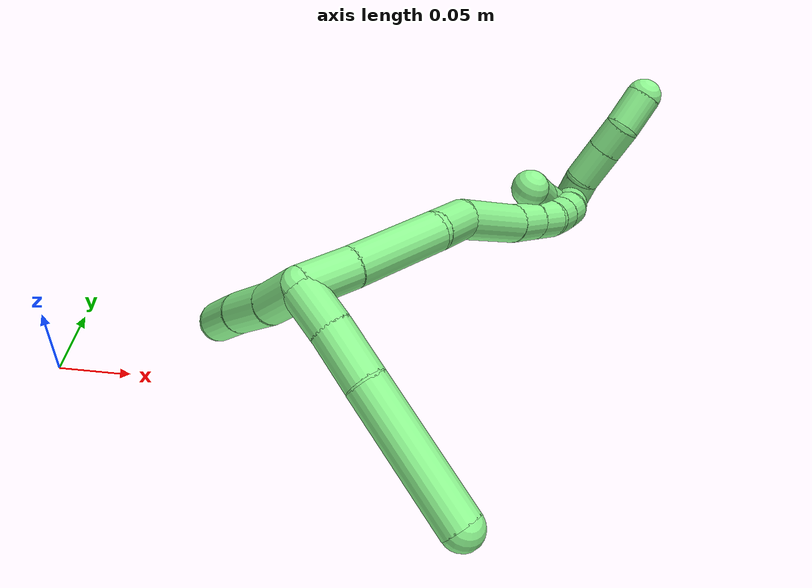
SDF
<sdf version="1.7">
 <world name="default">
  <model name="13">
   <static>0</static>
   <link name="13">
    <collision name="collision-cylinder-e_1_2_8">
     <pose>0.003215 -0.013381 -0.002888 1.78336 0.230701 0.285129</pose>
     <geometry><cylinder><radius>0.0125</radius><length>0.028124</length></cylinder></geometry>
     <surface>
      <friction><ode><mu>1.16</mu><mu2>1.16</mu2><slip1>0</slip1><slip2>0</slip2></ode></friction>
      <contact><ode><kp>1e+06</kp><kd>1</kd><max_vel>0</max_vel><min_depth>0.001</min_depth></ode></contact>
     </surface>
    </collision>
    <visual name="visual-cylinder-e_1_2_8">
     <pose>0.003215 -0.013381 -0.002888 1.78336 0.230701 0.285129</pose>
     <geometry><cylinder><radius>0.0125</radius><length>0.028124</length></cylinder></geometry>
     <material><ambient>0.564706 0.984314 0.572549 1</ambient></material>
    </visual>
    <collision name="collision-cylinder-e_2_8_9">
     <pose>0.00891 -0.043749 -0.008507 1.73023 0.143132 0.167879</pose>
     <geometry><cylinder><radius>0.0125</radius><length>0.034766</length></cylinder></geometry>
     <surface>
      <friction><ode><mu>1.16</mu><mu2>1.16</mu2><slip1>0</slip1><slip2>0</slip2></ode></friction>
      <contact><ode><kp>1e+06</kp><kd>1</kd><max_vel>0</max_vel><min_depth>0.001</min_depth></ode></contact>
     </surface>
    </collision>
    <visual name="visual-cylinder-e_2_8_9">
     <pose>0.00891 -0.043749 -0.008507 1.73023 0.143132 0.167879</pose>
     <geometry><cylinder><radius>0.0125</radius><length>0.034766</length></cylinder></geometry>
     <material><ambient>0.564706 0.984314 0.572549 1</ambient></material>
    </visual>
    <collision name="collision-cylinder-e_3_9_6">
     <pose>0.020383 -0.101903 -0.022261 1.83239 0.207966 0.270293</pose>
     <geometry><cylinder><radius>0.0125</radius><length>0.087111</length></cylinder></geometry>
     <surface>
      <friction><ode><mu>1.16</mu><mu2>1.16</mu2><slip1>0</slip1><slip2>0</slip2></ode></friction>
      <contact><ode><kp>1e+06</kp><kd>1</kd><max_vel>0</max_vel><min_depth>0.001</min_depth></ode></contact>
     </surface>
    </collision>
    <visual name="visual-cylinder-e_3_9_6">
     <pose>0.020383 -0.101903 -0.022261 1.83239 0.207966 0.270293</pose>
     <geometry><cylinder><radius>0.0125</radius><length>0.087111</length></cylinder></geometry>
     <material><ambient>0.564706 0.984314 0.572549 1</ambient></material>
    </visual>
    <collision name="collision-cylinder-e_1_2_10">
     <pose>-0.003029 0.006695 -0.014 -2.69551 -0.192735 0.805753</pose>
     <geometry><cylinder><radius>0.0125</radius><length>0.031622</length></cylinder></geometry>
     <surface>
      <friction><ode><mu>1.16</mu><mu2>1.16</mu2><slip1>0</slip1><slip2>0</slip2></ode></friction>
      <contact><ode><kp>1e+06</kp><kd>1</kd><max_vel>0</max_vel><min_depth>0.001</min_depth></ode></contact>
     </surface>
    </collision>
    <visual name="visual-cylinder-e_1_2_10">
     <pose>-0.003029 0.006695 -0.014 -2.69551 -0.192735 0.805753</pose>
     <geometry><cylinder><radius>0.0125</radius><length>0.031622</length></cylinder></geometry>
     <material><ambient>0.564706 0.984314 0.572549 1</ambient></material>
    </visual>
    <collision name="collision-cylinder-e_2_10_11">
     <pose>-0.008914 0.02272 -0.042435 -2.56782 -0.164735 0.54569</pose>
     <geometry><cylinder><radius>0.0125</radius><length>0.034847</length></cylinder></geometry>
     <surface>
      <friction><ode><mu>1.16</mu><mu2>1.16</mu2><slip1>0</slip1><slip2>0</slip2></ode></friction>
      <contact><ode><kp>1e+06</kp><kd>1</kd><max_vel>0</max_vel><min_depth>0.001</min_depth></ode></contact>
     </surface>
    </collision>
    <visual name="visual-cylinder-e_2_10_11">
     <pose>-0.008914 0.02272 -0.042435 -2.56782 -0.164735 0.54569</pose>
     <geometry><cylinder><radius>0.0125</radius><length>0.034847</length></cylinder></geometry>
     <material><ambient>0.564706 0.984314 0.572549 1</ambient></material>
    </visual>
    <collision name="collision-cylinder-e_3_11_5">
     <pose>-0.012752 0.040473 -0.071332 -2.61419 -0.058485 0.215841</pose>
     <geometry><cylinder><radius>0.0125</radius><length>0.033531</length></cylinder></geometry>
     <surface>
      <friction><ode><mu>1.16</mu><mu2>1.16</mu2><slip1>0</slip1><slip2>0</slip2></ode></friction>
      <contact><ode><kp>1e+06</kp><kd>1</kd><max_vel>0</max_vel><min_depth>0.001</min_depth></ode></contact>
     </surface>
    </collision>
    <visual name="visual-cylinder-e_3_11_5">
     <pose>-0.012752 0.040473 -0.071332 -2.61419 -0.058485 0.215841</pose>
     <geometry><cylinder><radius>0.0125</radius><length>0.033531</length></cylinder></geometry>
     <material><ambient>0.564706 0.984314 0.572549 1</ambient></material>
    </visual>
    <collision name="collision-cylinder-e_1_2_12">
     <pose>0.016704 0.001524 0.001165 -0.917828 1.45646 -0.830025</pose>
     <geometry><cylinder><radius>0.0125</radius><length>0.033628</length></cylinder></geometry>
     <surface>
      <friction><ode><mu>1.16</mu><mu2>1.16</mu2><slip1>0</slip1><slip2>0</slip2></ode></friction>
      <contact><ode><kp>1e+06</kp><kd>1</kd><max_vel>0</max_vel><min_depth>0.001</min_depth></ode></contact>
     </surface>
    </collision>
    <visual name="visual-cylinder-e_1_2_12">
     <pose>0.016704 0.001524 0.001165 -0.917828 1.45646 -0.830025</pose>
     <geometry><cylinder><radius>0.0125</radius><length>0.033628</length></cylinder></geometry>
     <material><ambient>0.564706 0.984314 0.572549 1</ambient></material>
    </visual>
    <collision name="collision-cylinder-e_2_12_13">
     <pose>0.063813 0.00752 0.003817 -1.25 1.41699 -1.10747</pose>
     <geometry><cylinder><radius>0.0125</radius><length>0.061535</length></cylinder></geometry>
     <surface>
      <friction><ode><mu>1.16</mu><mu2>1.16</mu2><slip1>0</slip1><slip2>0</slip2></ode></friction>
      <contact><ode><kp>1e+06</kp><kd>1</kd><max_vel>0</max_vel><min_depth>0.001</min_depth></ode></contact>
     </surface>
    </collision>
    <visual name="visual-cylinder-e_2_12_13">
     <pose>0.063813 0.00752 0.003817 -1.25 1.41699 -1.10747</pose>
     <geometry><cylinder><radius>0.0125</radius><length>0.061535</length></cylinder></geometry>
     <material><ambient>0.564706 0.984314 0.572549 1</ambient></material>
    </visual>
    <collision name="collision-cylinder-e_3_13_14">
     <pose>0.108596 0.016901 0.001669 -2.20823 1.16912 -1.84012</pose>
     <geometry><cylinder><radius>0.0125</radius><length>0.031243</length></cylinder></geometry>
     <surface>
      <friction><ode><mu>1.16</mu><mu2>1.16</mu2><slip1>0</slip1><slip2>0</slip2></ode></friction>
      <contact><ode><kp>1e+06</kp><kd>1</kd><max_vel>0</max_vel><min_depth>0.001</min_depth></ode></contact>
     </surface>
    </collision>
    <visual name="visual-cylinder-e_3_13_14">
     <pose>0.108596 0.016901 0.001669 -2.20823 1.16912 -1.84012</pose>
     <geometry><cylinder><radius>0.0125</radius><length>0.031243</length></cylinder></geometry>
     <material><ambient>0.564706 0.984314 0.572549 1</ambient></material>
    </visual>
    <collision name="collision-cylinder-e_4_14_15">
     <pose>0.147252 0.021775 -0.010433 3.13747 1.23525 3.13579</pose>
     <geometry><cylinder><radius>0.0125</radius><length>0.051425</length></cylinder></geometry>
     <surface>
      <friction><ode><mu>1.16</mu><mu2>1.16</mu2><slip1>0</slip1><slip2>0</slip2></ode></friction>
      <contact><ode><kp>1e+06</kp><kd>1</kd><max_vel>0</max_vel><min_depth>0.001</min_depth></ode></contact>
     </surface>
    </collision>
    <visual name="visual-cylinder-e_4_14_15">
     <pose>0.147252 0.021775 -0.010433 3.13747 1.23525 3.13579</pose>
     <geometry><cylinder><radius>0.0125</radius><length>0.051425</length></cylinder></geometry>
     <material><ambient>0.564706 0.984314 0.572549 1</ambient></material>
    </visual>
    <collision name="collision-cylinder-e_5_15_16">
     <pose>0.182215 0.022588 -0.021441 -2.81946 1.32508 -2.73095</pose>
     <geometry><cylinder><radius>0.0125</radius><length>0.02203</length></cylinder></geometry>
     <surface>
      <friction><ode><mu>1.16</mu><mu2>1.16</mu2><slip1>0</slip1><slip2>0</slip2></ode></friction>
      <contact><ode><kp>1e+06</kp><kd>1</kd><max_vel>0</max_vel><min_depth>0.001</min_depth></ode></contact>
     </surface>
    </collision>
    <visual name="visual-cylinder-e_5_15_16">
     <pose>0.182215 0.022588 -0.021441 -2.81946 1.32508 -2.73095</pose>
     <geometry><cylinder><radius>0.0125</radius><length>0.02203</length></cylinder></geometry>
     <material><ambient>0.564706 0.984314 0.572549 1</ambient></material>
    </visual>
    <collision name="collision-cylinder-e_6_16_17">
     <pose>0.202656 0.024148 -0.026236 -2.83576 1.33321 -2.75471</pose>
     <geometry><cylinder><radius>0.0125</radius><length>0.020078</length></cylinder></geometry>
     <surface>
      <friction><ode><mu>1.16</mu><mu2>1.16</mu2><slip1>0</slip1><slip2>0</slip2></ode></friction>
      <contact><ode><kp>1e+06</kp><kd>1</kd><max_vel>0</max_vel><min_depth>0.001</min_depth></ode></contact>
     </surface>
    </collision>
    <visual name="visual-cylinder-e_6_16_17">
     <pose>0.202656 0.024148 -0.026236 -2.83576 1.33321 -2.75471</pose>
     <geometry><cylinder><radius>0.0125</radius><length>0.020078</length></cylinder></geometry>
     <material><ambient>0.564706 0.984314 0.572549 1</ambient></material>
    </visual>
    <collision name="collision-cylinder-e_7_17_18">
     <pose>0.221195 0.028175 -0.032005 -2.38543 1.06769 -1.95827</pose>
     <geometry><cylinder><radius>0.0125</radius><length>0.020049</length></cylinder></geometry>
     <surface>
      <friction><ode><mu>1.16</mu><mu2>1.16</mu2><slip1>0</slip1><slip2>0</slip2></ode></friction>
      <contact><ode><kp>1e+06</kp><kd>1</kd><max_vel>0</max_vel><min_depth>0.001</min_depth></ode></contact>
     </surface>
    </collision>
    <visual name="visual-cylinder-e_7_17_18">
     <pose>0.221195 0.028175 -0.032005 -2.38543 1.06769 -1.95827</pose>
     <geometry><cylinder><radius>0.0125</radius><length>0.020049</length></cylinder></geometry>
     <material><ambient>0.564706 0.984314 0.572549 1</ambient></material>
    </visual>
    <collision name="collision-cylinder-e_8_18_19">
     <pose>0.23869 0.035267 -0.038668 -2.26571 1.05715 -1.78989</pose>
     <geometry><cylinder><radius>0.0125</radius><length>0.020007</length></cylinder></geometry>
     <surface>
      <friction><ode><mu>1.16</mu><mu2>1.16</mu2><slip1>0</slip1><slip2>0</slip2></ode></friction>
      <contact><ode><kp>1e+06</kp><kd>1</kd><max_vel>0</max_vel><min_depth>0.001</min_depth></ode></contact>
     </surface>
    </collision>
    <visual name="visual-cylinder-e_8_18_19">
     <pose>0.23869 0.035267 -0.038668 -2.26571 1.05715 -1.78989</pose>
     <geometry><cylinder><radius>0.0125</radius><length>0.020007</length></cylinder></geometry>
     <material><ambient>0.564706 0.984314 0.572549 1</ambient></material>
    </visual>
    <collision name="collision-cylinder-e_9_19_20">
     <pose>0.254539 0.044296 -0.046452 -2.29396 0.794566 -1.49833</pose>
     <geometry><cylinder><radius>0.0125</radius><length>0.020003</length></cylinder></geometry>
     <surface>
      <friction><ode><mu>1.16</mu><mu2>1.16</mu2><slip1>0</slip1><slip2>0</slip2></ode></friction>
      <contact><ode><kp>1e+06</kp><kd>1</kd><max_vel>0</max_vel><min_depth>0.001</min_depth></ode></contact>
     </surface>
    </collision>
    <visual name="visual-cylinder-e_9_19_20">
     <pose>0.254539 0.044296 -0.046452 -2.29396 0.794566 -1.49833</pose>
     <geometry><cylinder><radius>0.0125</radius><length>0.020003</length></cylinder></geometry>
     <material><ambient>0.564706 0.984314 0.572549 1</ambient></material>
    </visual>
    <collision name="collision-cylinder-e_10_20_1">
     <pose>0.267407 0.053946 -0.058006 -2.57536 0.610171 -1.64993</pose>
     <geometry><cylinder><radius>0.0125</radius><length>0.020002</length></cylinder></geometry>
     <surface>
      <friction><ode><mu>1.16</mu><mu2>1.16</mu2><slip1>0</slip1><slip2>0</slip2></ode></friction>
      <contact><ode><kp>1e+06</kp><kd>1</kd><max_vel>0</max_vel><min_depth>0.001</min_depth></ode></contact>
     </surface>
    </collision>
    <visual name="visual-cylinder-e_10_20_1">
     <pose>0.267407 0.053946 -0.058006 -2.57536 0.610171 -1.64993</pose>
     <geometry><cylinder><radius>0.0125</radius><length>0.020002</length></cylinder></geometry>
     <material><ambient>0.564706 0.984314 0.572549 1</ambient></material>
    </visual>
    <collision name="collision-cylinder-e_1_1_21">
     <pose>0.274563 0.05957 -0.051964 -0.094362 0.109104 -0.005157</pose>
     <geometry><cylinder><radius>0.0125</radius><length>0.026191</length></cylinder></geometry>
     <surface>
      <friction><ode><mu>1.16</mu><mu2>1.16</mu2><slip1>0</slip1><slip2>0</slip2></ode></friction>
      <contact><ode><kp>1e+06</kp><kd>1</kd><max_vel>0</max_vel><min_depth>0.001</min_depth></ode></contact>
     </surface>
    </collision>
    <visual name="visual-cylinder-e_1_1_21">
     <pose>0.274563 0.05957 -0.051964 -0.094362 0.109104 -0.005157</pose>
     <geometry><cylinder><radius>0.0125</radius><length>0.026191</length></cylinder></geometry>
     <material><ambient>0.564706 0.984314 0.572549 1</ambient></material>
    </visual>
    <collision name="collision-cylinder-e_2_21_22">
     <pose>0.281074 0.06205 -0.026576 -0.100521 0.386578 -0.019691</pose>
     <geometry><cylinder><radius>0.0125</radius><length>0.026973</length></cylinder></geometry>
     <surface>
      <friction><ode><mu>1.16</mu><mu2>1.16</mu2><slip1>0</slip1><slip2>0</slip2></ode></friction>
      <contact><ode><kp>1e+06</kp><kd>1</kd><max_vel>0</max_vel><min_depth>0.001</min_depth></ode></contact>
     </surface>
    </collision>
    <visual name="visual-cylinder-e_2_21_22">
     <pose>0.281074 0.06205 -0.026576 -0.100521 0.386578 -0.019691</pose>
     <geometry><cylinder><radius>0.0125</radius><length>0.026973</length></cylinder></geometry>
     <material><ambient>0.564706 0.984314 0.572549 1</ambient></material>
    </visual>
    <collision name="collision-cylinder-e_3_22_23">
     <pose>0.289993 0.064201 -0.004608 -0.093812 0.380669 -0.018087</pose>
     <geometry><cylinder><radius>0.0125</radius><length>0.020641</length></cylinder></geometry>
     <surface>
      <friction><ode><mu>1.16</mu><mu2>1.16</mu2><slip1>0</slip1><slip2>0</slip2></ode></friction>
      <contact><ode><kp>1e+06</kp><kd>1</kd><max_vel>0</max_vel><min_depth>0.001</min_depth></ode></contact>
     </surface>
    </collision>
    <visual name="visual-cylinder-e_3_22_23">
     <pose>0.289993 0.064201 -0.004608 -0.093812 0.380669 -0.018087</pose>
     <geometry><cylinder><radius>0.0125</radius><length>0.020641</length></cylinder></geometry>
     <material><ambient>0.564706 0.984314 0.572549 1</ambient></material>
    </visual>
    <collision name="collision-cylinder-e_4_23_4">
     <pose>0.301433 0.068946 0.014876 -0.369186 0.619618 -0.119402</pose>
     <geometry><cylinder><radius>0.0125</radius><length>0.026195</length></cylinder></geometry>
     <surface>
      <friction><ode><mu>1.16</mu><mu2>1.16</mu2><slip1>0</slip1><slip2>0</slip2></ode></friction>
      <contact><ode><kp>1e+06</kp><kd>1</kd><max_vel>0</max_vel><min_depth>0.001</min_depth></ode></contact>
     </surface>
    </collision>
    <visual name="visual-cylinder-e_4_23_4">
     <pose>0.301433 0.068946 0.014876 -0.369186 0.619618 -0.119402</pose>
     <geometry><cylinder><radius>0.0125</radius><length>0.026195</length></cylinder></geometry>
     <material><ambient>0.564706 0.984314 0.572549 1</ambient></material>
    </visual>
    <collision name="collision-cylinder-e_1_1_24">
     <pose>0.259964 0.055429 -0.058162 0.406861 -1.06112 -0.240871</pose>
     <geometry><cylinder><radius>0.0125</radius><length>0.030183</length></cylinder></geometry>
     <surface>
      <friction><ode><mu>1.16</mu><mu2>1.16</mu2><slip1>0</slip1><slip2>0</slip2></ode></friction>
      <contact><ode><kp>1e+06</kp><kd>1</kd><max_vel>0</max_vel><min_depth>0.001</min_depth></ode></contact>
     </surface>
    </collision>
    <visual name="visual-cylinder-e_1_1_24">
     <pose>0.259964 0.055429 -0.058162 0.406861 -1.06112 -0.240871</pose>
     <geometry><cylinder><radius>0.0125</radius><length>0.030183</length></cylinder></geometry>
     <material><ambient>0.564706 0.984314 0.572549 1</ambient></material>
    </visual>
    <collision name="collision-cylinder-e_2_24_25">
     <pose>0.233984 0.050223 -0.041669 0.231423 -0.907985 -0.113317</pose>
     <geometry><cylinder><radius>0.0125</radius><length>0.032494</length></cylinder></geometry>
     <surface>
      <friction><ode><mu>1.16</mu><mu2>1.16</mu2><slip1>0</slip1><slip2>0</slip2></ode></friction>
      <contact><ode><kp>1e+06</kp><kd>1</kd><max_vel>0</max_vel><min_depth>0.001</min_depth></ode></contact>
     </surface>
    </collision>
    <visual name="visual-cylinder-e_2_24_25">
     <pose>0.233984 0.050223 -0.041669 0.231423 -0.907985 -0.113317</pose>
     <geometry><cylinder><radius>0.0125</radius><length>0.032494</length></cylinder></geometry>
     <material><ambient>0.564706 0.984314 0.572549 1</ambient></material>
    </visual>
    <collision name="collision-cylinder-e_3_25_3">
     <pose>0.207506 0.043257 -0.020126 0.376667 -0.822105 -0.165771</pose>
     <geometry><cylinder><radius>0.0125</radius><length>0.037324</length></cylinder></geometry>
     <surface>
      <friction><ode><mu>1.16</mu><mu2>1.16</mu2><slip1>0</slip1><slip2>0</slip2></ode></friction>
      <contact><ode><kp>1e+06</kp><kd>1</kd><max_vel>0</max_vel><min_depth>0.001</min_depth></ode></contact>
     </surface>
    </collision>
    <visual name="visual-cylinder-e_3_25_3">
     <pose>0.207506 0.043257 -0.020126 0.376667 -0.822105 -0.165771</pose>
     <geometry><cylinder><radius>0.0125</radius><length>0.037324</length></cylinder></geometry>
     <material><ambient>0.564706 0.984314 0.572549 1</ambient></material>
    </visual>
    <collision name="collision-sphere-3">
     <pose>0.193834 0.038585 -0.008314 0 -0 0</pose>
     <geometry><sphere><radius>0.0125</radius></sphere></geometry>
     <surface>
      <friction><ode><mu>1.16</mu><mu2>1.16</mu2><slip1>0</slip1><slip2>0</slip2></ode></friction>
      <contact><ode><kp>1e+06</kp><kd>1</kd><max_vel>0</max_vel><min_depth>0.001</min_depth></ode></contact>
     </surface>
    </collision>
    <visual name="visual-sphere-3">
     <pose>0.193834 0.038585 -0.008314 0 -0 0</pose>
     <geometry><sphere><radius>0.0125</radius></sphere></geometry>
     <material><ambient>0.564706 0.984314 0.572549 1</ambient></material>
    </visual>
    <collision name="collision-sphere-25">
     <pose>0.221177 0.04793 -0.031939 0 -0 0</pose>
     <geometry><sphere><radius>0.0125</radius></sphere></geometry>
     <surface>
      <friction><ode><mu>1.16</mu><mu2>1.16</mu2><slip1>0</slip1><slip2>0</slip2></ode></friction>
      <contact><ode><kp>1e+06</kp><kd>1</kd><max_vel>0</max_vel><min_depth>0.001</min_depth></ode></contact>
     </surface>
    </collision>
    <visual name="visual-sphere-25">
     <pose>0.221177 0.04793 -0.031939 0 -0 0</pose>
     <geometry><sphere><radius>0.0125</radius></sphere></geometry>
     <material><ambient>0.564706 0.984314 0.572549 1</ambient></material>
    </visual>
    <collision name="collision-sphere-24">
     <pose>0.246791 0.052516 -0.0514 0 -0 0</pose>
     <geometry><sphere><radius>0.0125</radius></sphere></geometry>
     <surface>
      <friction><ode><mu>1.16</mu><mu2>1.16</mu2><slip1>0</slip1><slip2>0</slip2></ode></friction>
      <contact><ode><kp>1e+06</kp><kd>1</kd><max_vel>0</max_vel><min_depth>0.001</min_depth></ode></contact>
     </surface>
    </collision>
    <visual name="visual-sphere-24">
     <pose>0.246791 0.052516 -0.0514 0 -0 0</pose>
     <geometry><sphere><radius>0.0125</radius></sphere></geometry>
     <material><ambient>0.564706 0.984314 0.572549 1</ambient></material>
    </visual>
    <collision name="collision-sphere-4">
     <pose>0.309039 0.072794 0.02482 0 -0 0</pose>
     <geometry><sphere><radius>0.0125</radius></sphere></geometry>
     <surface>
      <friction><ode><mu>1.16</mu><mu2>1.16</mu2><slip1>0</slip1><slip2>0</slip2></ode></friction>
      <contact><ode><kp>1e+06</kp><kd>1</kd><max_vel>0</max_vel><min_depth>0.001</min_depth></ode></contact>
     </surface>
    </collision>
    <visual name="visual-sphere-4">
     <pose>0.309039 0.072794 0.02482 0 -0 0</pose>
     <geometry><sphere><radius>0.0125</radius></sphere></geometry>
     <material><ambient>0.564706 0.984314 0.572549 1</ambient></material>
    </visual>
    <collision name="collision-sphere-23">
     <pose>0.293827 0.065098 0.004932 0 -0 0</pose>
     <geometry><sphere><radius>0.0125</radius></sphere></geometry>
     <surface>
      <friction><ode><mu>1.16</mu><mu2>1.16</mu2><slip1>0</slip1><slip2>0</slip2></ode></friction>
      <contact><ode><kp>1e+06</kp><kd>1</kd><max_vel>0</max_vel><min_depth>0.001</min_depth></ode></contact>
     </surface>
    </collision>
    <visual name="visual-sphere-23">
     <pose>0.293827 0.065098 0.004932 0 -0 0</pose>
     <geometry><sphere><radius>0.0125</radius></sphere></geometry>
     <material><ambient>0.564706 0.984314 0.572549 1</ambient></material>
    </visual>
    <collision name="collision-sphere-22">
     <pose>0.286159 0.063303 -0.014148 0 -0 0</pose>
     <geometry><sphere><radius>0.0125</radius></sphere></geometry>
     <surface>
      <friction><ode><mu>1.16</mu><mu2>1.16</mu2><slip1>0</slip1><slip2>0</slip2></ode></friction>
      <contact><ode><kp>1e+06</kp><kd>1</kd><max_vel>0</max_vel><min_depth>0.001</min_depth></ode></contact>
     </surface>
    </collision>
    <visual name="visual-sphere-22">
     <pose>0.286159 0.063303 -0.014148 0 -0 0</pose>
     <geometry><sphere><radius>0.0125</radius></sphere></geometry>
     <material><ambient>0.564706 0.984314 0.572549 1</ambient></material>
    </visual>
    <collision name="collision-sphere-21">
     <pose>0.275989 0.060796 -0.039004 0 -0 0</pose>
     <geometry><sphere><radius>0.0125</radius></sphere></geometry>
     <surface>
      <friction><ode><mu>1.16</mu><mu2>1.16</mu2><slip1>0</slip1><slip2>0</slip2></ode></friction>
      <contact><ode><kp>1e+06</kp><kd>1</kd><max_vel>0</max_vel><min_depth>0.001</min_depth></ode></contact>
     </surface>
    </collision>
    <visual name="visual-sphere-21">
     <pose>0.275989 0.060796 -0.039004 0 -0 0</pose>
     <geometry><sphere><radius>0.0125</radius></sphere></geometry>
     <material><ambient>0.564706 0.984314 0.572549 1</ambient></material>
    </visual>
    <collision name="collision-sphere-1">
     <pose>0.273137 0.058343 -0.064924 0 -0 0</pose>
     <geometry><sphere><radius>0.0125</radius></sphere></geometry>
     <surface>
      <friction><ode><mu>1.16</mu><mu2>1.16</mu2><slip1>0</slip1><slip2>0</slip2></ode></friction>
      <contact><ode><kp>1e+06</kp><kd>1</kd><max_vel>0</max_vel><min_depth>0.001</min_depth></ode></contact>
     </surface>
    </collision>
    <visual name="visual-sphere-1">
     <pose>0.273137 0.058343 -0.064924 0 -0 0</pose>
     <geometry><sphere><radius>0.0125</radius></sphere></geometry>
     <material><ambient>0.564706 0.984314 0.572549 1</ambient></material>
    </visual>
    <collision name="collision-sphere-11">
     <pose>-0.011772 0.032049 -0.05687 0 -0 0</pose>
     <geometry><sphere><radius>0.0125</radius></sphere></geometry>
     <surface>
      <friction><ode><mu>1.16</mu><mu2>1.16</mu2><slip1>0</slip1><slip2>0</slip2></ode></friction>
      <contact><ode><kp>1e+06</kp><kd>1</kd><max_vel>0</max_vel><min_depth>0.001</min_depth></ode></contact>
     </surface>
    </collision>
    <visual name="visual-sphere-11">
     <pose>-0.011772 0.032049 -0.05687 0 -0 0</pose>
     <geometry><sphere><radius>0.0125</radius></sphere></geometry>
     <material><ambient>0.564706 0.984314 0.572549 1</ambient></material>
    </visual>
    <collision name="collision-sphere-10">
     <pose>-0.006057 0.01339 -0.027999 0 -0 0</pose>
     <geometry><sphere><radius>0.0125</radius></sphere></geometry>
     <surface>
      <friction><ode><mu>1.16</mu><mu2>1.16</mu2><slip1>0</slip1><slip2>0</slip2></ode></friction>
      <contact><ode><kp>1e+06</kp><kd>1</kd><max_vel>0</max_vel><min_depth>0.001</min_depth></ode></contact>
     </surface>
    </collision>
    <visual name="visual-sphere-10">
     <pose>-0.006057 0.01339 -0.027999 0 -0 0</pose>
     <geometry><sphere><radius>0.0125</radius></sphere></geometry>
     <material><ambient>0.564706 0.984314 0.572549 1</ambient></material>
    </visual>
    <collision name="collision-sphere-6">
     <pose>0.029376 -0.14307 -0.033282 0 -0 0</pose>
     <geometry><sphere><radius>0.0125</radius></sphere></geometry>
     <surface>
      <friction><ode><mu>1.16</mu><mu2>1.16</mu2><slip1>0</slip1><slip2>0</slip2></ode></friction>
      <contact><ode><kp>1e+06</kp><kd>1</kd><max_vel>0</max_vel><min_depth>0.001</min_depth></ode></contact>
     </surface>
    </collision>
    <visual name="visual-sphere-6">
     <pose>0.029376 -0.14307 -0.033282 0 -0 0</pose>
     <geometry><sphere><radius>0.0125</radius></sphere></geometry>
     <material><ambient>0.564706 0.984314 0.572549 1</ambient></material>
    </visual>
    <collision name="collision-sphere-9">
     <pose>0.01139 -0.060736 -0.011239 0 -0 0</pose>
     <geometry><sphere><radius>0.0125</radius></sphere></geometry>
     <surface>
      <friction><ode><mu>1.16</mu><mu2>1.16</mu2><slip1>0</slip1><slip2>0</slip2></ode></friction>
      <contact><ode><kp>1e+06</kp><kd>1</kd><max_vel>0</max_vel><min_depth>0.001</min_depth></ode></contact>
     </surface>
    </collision>
    <visual name="visual-sphere-9">
     <pose>0.01139 -0.060736 -0.011239 0 -0 0</pose>
     <geometry><sphere><radius>0.0125</radius></sphere></geometry>
     <material><ambient>0.564706 0.984314 0.572549 1</ambient></material>
    </visual>
    <collision name="collision-sphere-2">
     <geometry><sphere><radius>0.0125</radius></sphere></geometry>
     <surface>
      <friction><ode><mu>1.16</mu><mu2>1.16</mu2><slip1>0</slip1><slip2>0</slip2></ode></friction>
      <contact><ode><kp>1e+06</kp><kd>1</kd><max_vel>0</max_vel><min_depth>0.001</min_depth></ode></contact>
     </surface>
    </collision>
    <visual name="visual-sphere-2">
     <geometry><sphere><radius>0.0125</radius></sphere></geometry>
     <material><ambient>0.564706 0.984314 0.572549 1</ambient></material>
    </visual>
    <collision name="collision-sphere-19">
     <pose>0.247403 0.039043 -0.041815 0 -0 0</pose>
     <geometry><sphere><radius>0.0125</radius></sphere></geometry>
     <surface>
      <friction><ode><mu>1.16</mu><mu2>1.16</mu2><slip1>0</slip1><slip2>0</slip2></ode></friction>
      <contact><ode><kp>1e+06</kp><kd>1</kd><max_vel>0</max_vel><min_depth>0.001</min_depth></ode></contact>
     </surface>
    </collision>
    <visual name="visual-sphere-19">
     <pose>0.247403 0.039043 -0.041815 0 -0 0</pose>
     <geometry><sphere><radius>0.0125</radius></sphere></geometry>
     <material><ambient>0.564706 0.984314 0.572549 1</ambient></material>
    </visual>
    <collision name="collision-sphere-8">
     <pose>0.006431 -0.026762 -0.005776 0 -0 0</pose>
     <geometry><sphere><radius>0.0125</radius></sphere></geometry>
     <surface>
      <friction><ode><mu>1.16</mu><mu2>1.16</mu2><slip1>0</slip1><slip2>0</slip2></ode></friction>
      <contact><ode><kp>1e+06</kp><kd>1</kd><max_vel>0</max_vel><min_depth>0.001</min_depth></ode></contact>
     </surface>
    </collision>
    <visual name="visual-sphere-8">
     <pose>0.006431 -0.026762 -0.005776 0 -0 0</pose>
     <geometry><sphere><radius>0.0125</radius></sphere></geometry>
     <material><ambient>0.564706 0.984314 0.572549 1</ambient></material>
    </visual>
    <collision name="collision-sphere-5">
     <pose>-0.013732 0.048896 -0.085795 0 -0 0</pose>
     <geometry><sphere><radius>0.0125</radius></sphere></geometry>
     <surface>
      <friction><ode><mu>1.16</mu><mu2>1.16</mu2><slip1>0</slip1><slip2>0</slip2></ode></friction>
      <contact><ode><kp>1e+06</kp><kd>1</kd><max_vel>0</max_vel><min_depth>0.001</min_depth></ode></contact>
     </surface>
    </collision>
    <visual name="visual-sphere-5">
     <pose>-0.013732 0.048896 -0.085795 0 -0 0</pose>
     <geometry><sphere><radius>0.0125</radius></sphere></geometry>
     <material><ambient>0.564706 0.984314 0.572549 1</ambient></material>
    </visual>
    <collision name="collision-sphere-12">
     <pose>0.033409 0.003047 0.002331 0 -0 0</pose>
     <geometry><sphere><radius>0.0125</radius></sphere></geometry>
     <surface>
      <friction><ode><mu>1.16</mu><mu2>1.16</mu2><slip1>0</slip1><slip2>0</slip2></ode></friction>
      <contact><ode><kp>1e+06</kp><kd>1</kd><max_vel>0</max_vel><min_depth>0.001</min_depth></ode></contact>
     </surface>
    </collision>
    <visual name="visual-sphere-12">
     <pose>0.033409 0.003047 0.002331 0 -0 0</pose>
     <geometry><sphere><radius>0.0125</radius></sphere></geometry>
     <material><ambient>0.564706 0.984314 0.572549 1</ambient></material>
    </visual>
    <collision name="collision-sphere-13">
     <pose>0.094217 0.011993 0.005303 0 -0 0</pose>
     <geometry><sphere><radius>0.0125</radius></sphere></geometry>
     <surface>
      <friction><ode><mu>1.16</mu><mu2>1.16</mu2><slip1>0</slip1><slip2>0</slip2></ode></friction>
      <contact><ode><kp>1e+06</kp><kd>1</kd><max_vel>0</max_vel><min_depth>0.001</min_depth></ode></contact>
     </surface>
    </collision>
    <visual name="visual-sphere-13">
     <pose>0.094217 0.011993 0.005303 0 -0 0</pose>
     <geometry><sphere><radius>0.0125</radius></sphere></geometry>
     <material><ambient>0.564706 0.984314 0.572549 1</ambient></material>
    </visual>
    <collision name="collision-sphere-14">
     <pose>0.122974 0.02181 -0.001966 0 -0 0</pose>
     <geometry><sphere><radius>0.0125</radius></sphere></geometry>
     <surface>
      <friction><ode><mu>1.16</mu><mu2>1.16</mu2><slip1>0</slip1><slip2>0</slip2></ode></friction>
      <contact><ode><kp>1e+06</kp><kd>1</kd><max_vel>0</max_vel><min_depth>0.001</min_depth></ode></contact>
     </surface>
    </collision>
    <visual name="visual-sphere-14">
     <pose>0.122974 0.02181 -0.001966 0 -0 0</pose>
     <geometry><sphere><radius>0.0125</radius></sphere></geometry>
     <material><ambient>0.564706 0.984314 0.572549 1</ambient></material>
    </visual>
    <collision name="collision-sphere-15">
     <pose>0.171531 0.02174 -0.018899 0 -0 0</pose>
     <geometry><sphere><radius>0.0125</radius></sphere></geometry>
     <surface>
      <friction><ode><mu>1.16</mu><mu2>1.16</mu2><slip1>0</slip1><slip2>0</slip2></ode></friction>
      <contact><ode><kp>1e+06</kp><kd>1</kd><max_vel>0</max_vel><min_depth>0.001</min_depth></ode></contact>
     </surface>
    </collision>
    <visual name="visual-sphere-15">
     <pose>0.171531 0.02174 -0.018899 0 -0 0</pose>
     <geometry><sphere><radius>0.0125</radius></sphere></geometry>
     <material><ambient>0.564706 0.984314 0.572549 1</ambient></material>
    </visual>
    <collision name="collision-sphere-16">
     <pose>0.192899 0.023436 -0.023982 0 -0 0</pose>
     <geometry><sphere><radius>0.0125</radius></sphere></geometry>
     <surface>
      <friction><ode><mu>1.16</mu><mu2>1.16</mu2><slip1>0</slip1><slip2>0</slip2></ode></friction>
      <contact><ode><kp>1e+06</kp><kd>1</kd><max_vel>0</max_vel><min_depth>0.001</min_depth></ode></contact>
     </surface>
    </collision>
    <visual name="visual-sphere-16">
     <pose>0.192899 0.023436 -0.023982 0 -0 0</pose>
     <geometry><sphere><radius>0.0125</radius></sphere></geometry>
     <material><ambient>0.564706 0.984314 0.572549 1</ambient></material>
    </visual>
    <collision name="collision-sphere-17">
     <pose>0.212413 0.024859 -0.028489 0 -0 0</pose>
     <geometry><sphere><radius>0.0125</radius></sphere></geometry>
     <surface>
      <friction><ode><mu>1.16</mu><mu2>1.16</mu2><slip1>0</slip1><slip2>0</slip2></ode></friction>
      <contact><ode><kp>1e+06</kp><kd>1</kd><max_vel>0</max_vel><min_depth>0.001</min_depth></ode></contact>
     </surface>
    </collision>
    <visual name="visual-sphere-17">
     <pose>0.212413 0.024859 -0.028489 0 -0 0</pose>
     <geometry><sphere><radius>0.0125</radius></sphere></geometry>
     <material><ambient>0.564706 0.984314 0.572549 1</ambient></material>
    </visual>
    <collision name="collision-sphere-18">
     <pose>0.229978 0.031492 -0.035521 0 -0 0</pose>
     <geometry><sphere><radius>0.0125</radius></sphere></geometry>
     <surface>
      <friction><ode><mu>1.16</mu><mu2>1.16</mu2><slip1>0</slip1><slip2>0</slip2></ode></friction>
      <contact><ode><kp>1e+06</kp><kd>1</kd><max_vel>0</max_vel><min_depth>0.001</min_depth></ode></contact>
     </surface>
    </collision>
    <visual name="visual-sphere-18">
     <pose>0.229978 0.031492 -0.035521 0 -0 0</pose>
     <geometry><sphere><radius>0.0125</radius></sphere></geometry>
     <material><ambient>0.564706 0.984314 0.572549 1</ambient></material>
    </visual>
    <collision name="collision-sphere-20">
     <pose>0.261676 0.049549 -0.051089 0 -0 0</pose>
     <geometry><sphere><radius>0.0125</radius></sphere></geometry>
     <surface>
      <friction><ode><mu>1.16</mu><mu2>1.16</mu2><slip1>0</slip1><slip2>0</slip2></ode></friction>
      <contact><ode><kp>1e+06</kp><kd>1</kd><max_vel>0</max_vel><min_depth>0.001</min_depth></ode></contact>
     </surface>
    </collision>
    <visual name="visual-sphere-20">
     <pose>0.261676 0.049549 -0.051089 0 -0 0</pose>
     <geometry><sphere><radius>0.0125</radius></sphere></geometry>
     <material><ambient>0.564706 0.984314 0.572549 1</ambient></material>
    </visual>
    <inertial>
     <pose>0.128503 0.012334 -0.02265 0 -0 0</pose>
     <mass>0.75</mass>
     <inertia><ixx>0.000118</ixx><ixy>0</ixy><ixz>0</ixz><iyy>5.9e-05</iyy><iyz>0</iyz><izz>-7e-06</izz></inertia>
    </inertial>
   </link>
   <pose>0.180007 -0.041017 0.130039 0.231202 0.163457 0.654948</pose>
  </model>
 </world>
</sdf>
